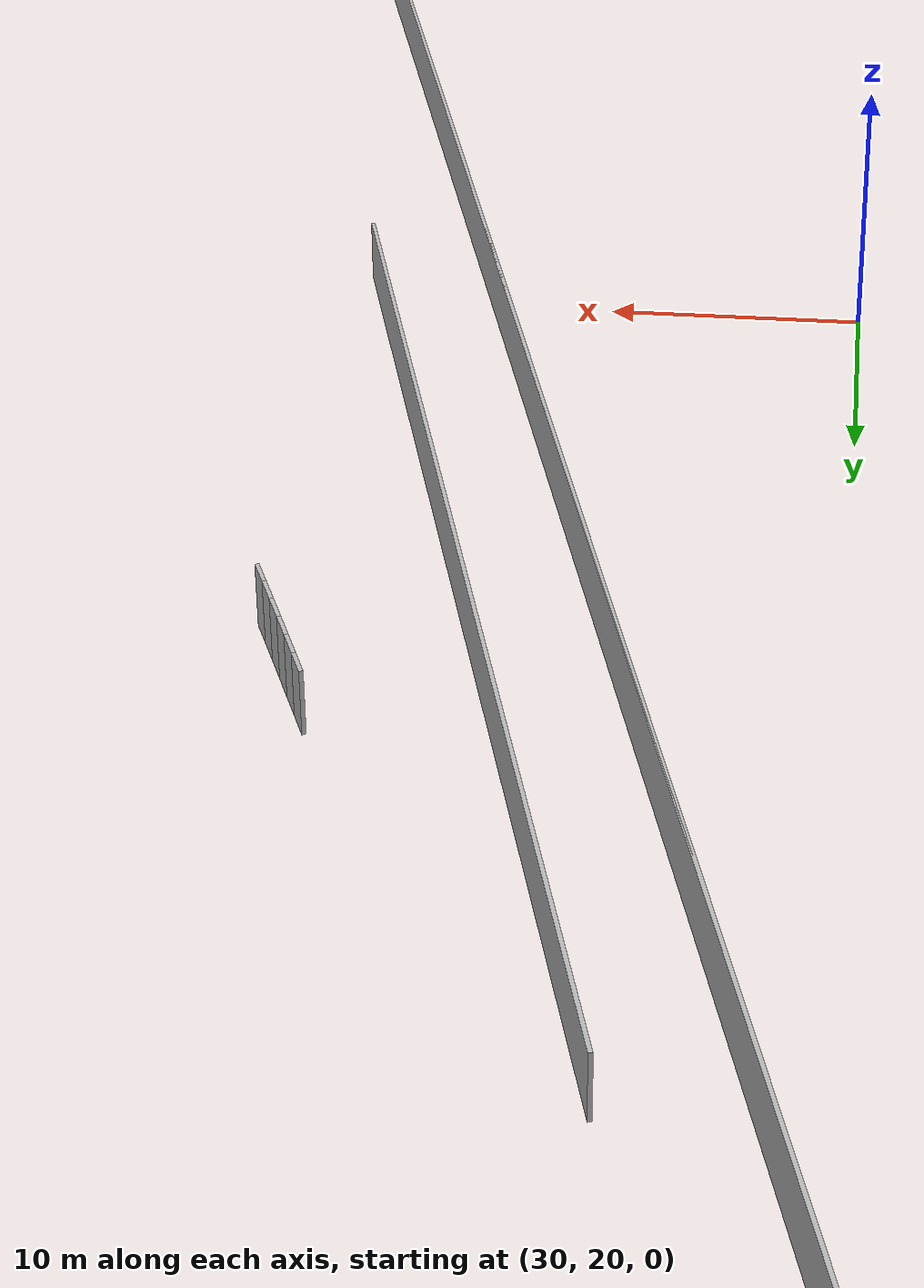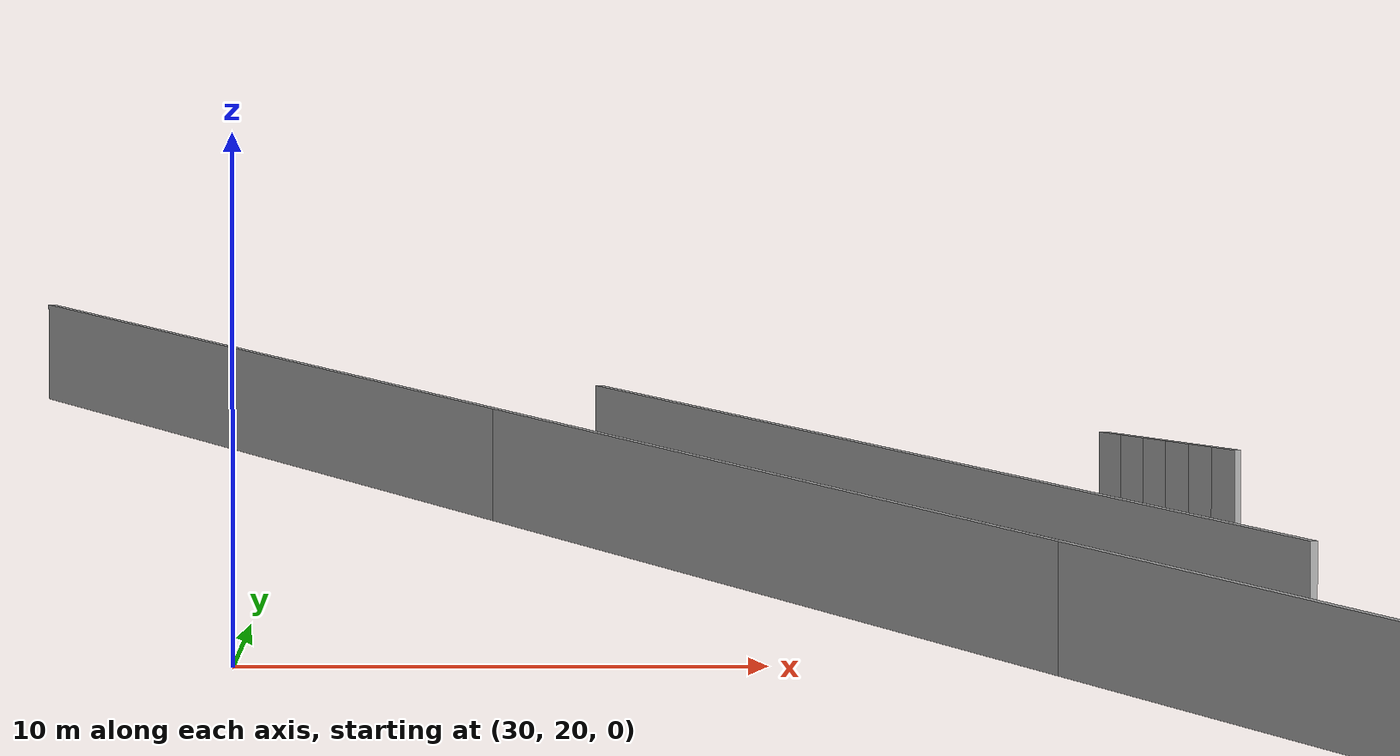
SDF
<?xml version="1.0" ?>
<sdf version="1.6">
  <model name="sps_0415">
    <pose frame="">0 0 0 0 -0 0</pose>
    <static>1</static>
    <self_collide>0</self_collide>
    <allow_auto_disable>0</allow_auto_disable>
    <link name="Wall272">
      <kinematic>0</kinematic>
      <gravity>1</gravity>
      <self_collide>0</self_collide>
      <collision name="collision">
        <geometry>
          <box>
            <size>51.7473 0.15 2.5</size>
          </box>
        </geometry>
        <pose frame="">0 0 0 0 -0 0</pose>
      </collision>
      <visual name="visual">
        <geometry>
          <box>
            <size>51.7473 0.15 2.5</size>
          </box>
        </geometry>
        <pose frame="">0 0 0 0 -0 0</pose>
        <cast_shadows>1</cast_shadows>
        <transparency>0.0</transparency>
      </visual>
      <pose frame="">43.408 42.8931 1.25 0 -0 1.83141</pose>
    </link>
    <link name="Wall331">
      <kinematic>0</kinematic>
      <gravity>1</gravity>
      <self_collide>0</self_collide>
      <collision name="collision">
        <geometry>
          <box>
            <size>42.4736 0.15 2.5</size>
          </box>
        </geometry>
        <pose frame="">0 0 0 0 -0 0</pose>
      </collision>
      <visual name="visual">
        <geometry>
          <box>
            <size>42.4736 0.15 2.5</size>
          </box>
        </geometry>
        <pose frame="">0 0 0 0 -0 0</pose>
        <cast_shadows>1</cast_shadows>
        <transparency>0.0</transparency>
      </visual>
      <pose frame="">39.9368 38.414 1.25 0 -0 1.83117</pose>
    </link>
    <link name="Wall1888">
      <kinematic>0</kinematic>
      <gravity>1</gravity>
      <self_collide>0</self_collide>
      <collision name="collision">
        <geometry>
          <box>
            <size>143.64 0.15 2.5</size>
          </box>
        </geometry>
        <pose frame="">0 0 0 0 -0 0</pose>
      </collision>
      <visual name="visual">
        <geometry>
          <box>
            <size>143.64 0.15 2.5</size>
          </box>
        </geometry>
        <pose frame="">0 0 0 0 -0 0</pose>
        <cast_shadows>1</cast_shadows>
        <transparency>0.0</transparency>
      </visual>
      <pose frame="">40.6503 35.736 1.25 0 -0 1.83117</pose>
    </link>
    <link name="Wall9331">
      <kinematic>0</kinematic>
      <gravity>1</gravity>
      <self_collide>0</self_collide>
      <collision name="collision">
        <geometry>
          <box>
            <size>1.12619 0.15 2.5</size>
          </box>
        </geometry>
        <pose frame="">0 0 0 0 -0 0</pose>
      </collision>
      <visual name="visual">
        <geometry>
          <box>
            <size>1.12619 0.15 2.5</size>
          </box>
        </geometry>
        <pose frame="">0 0 0 0 -0 0</pose>
        <cast_shadows>1</cast_shadows>
        <transparency>0.0</transparency>
      </visual>
      <pose frame="">47.8216 49.9898 1.25 0 0 -1.18496</pose>
    </link>
    <link name="Wall9332">
      <kinematic>0</kinematic>
      <gravity>1</gravity>
      <self_collide>0</self_collide>
      <collision name="collision">
        <geometry>
          <box>
            <size>1.12646 0.15 2.5</size>
          </box>
        </geometry>
        <pose frame="">0 0 0 0 -0 0</pose>
      </collision>
      <visual name="visual">
        <geometry>
          <box>
            <size>1.12646 0.15 2.5</size>
          </box>
        </geometry>
        <pose frame="">0 0 0 0 -0 0</pose>
        <cast_shadows>1</cast_shadows>
        <transparency>0.0</transparency>
      </visual>
      <pose frame="">48.246 48.9465 1.25 0 0 -1.18394</pose>
    </link>
    <link name="Wall9333">
      <kinematic>0</kinematic>
      <gravity>1</gravity>
      <self_collide>0</self_collide>
      <collision name="collision">
        <geometry>
          <box>
            <size>1.1262 0.15 2.5</size>
          </box>
        </geometry>
        <pose frame="">0 0 0 0 -0 0</pose>
      </collision>
      <visual name="visual">
        <geometry>
          <box>
            <size>1.1262 0.15 2.5</size>
          </box>
        </geometry>
        <pose frame="">0 0 0 0 -0 0</pose>
        <cast_shadows>1</cast_shadows>
        <transparency>0.0</transparency>
      </visual>
      <pose frame="">48.6717 47.9037 1.25 0 0 -1.1825</pose>
    </link>
    <link name="Wall9334">
      <kinematic>0</kinematic>
      <gravity>1</gravity>
      <self_collide>0</self_collide>
      <collision name="collision">
        <geometry>
          <box>
            <size>1.12631 0.15 2.5</size>
          </box>
        </geometry>
        <pose frame="">0 0 0 0 -0 0</pose>
      </collision>
      <visual name="visual">
        <geometry>
          <box>
            <size>1.12631 0.15 2.5</size>
          </box>
        </geometry>
        <pose frame="">0 0 0 0 -0 0</pose>
        <cast_shadows>1</cast_shadows>
        <transparency>0.0</transparency>
      </visual>
      <pose frame="">49.0986 46.8615 1.25 0 0 -1.18155</pose>
    </link>
    <link name="Wall9335">
      <kinematic>0</kinematic>
      <gravity>1</gravity>
      <self_collide>0</self_collide>
      <collision name="collision">
        <geometry>
          <box>
            <size>1.1262 0.15 2.5</size>
          </box>
        </geometry>
        <pose frame="">0 0 0 0 -0 0</pose>
      </collision>
      <visual name="visual">
        <geometry>
          <box>
            <size>1.1262 0.15 2.5</size>
          </box>
        </geometry>
        <pose frame="">0 0 0 0 -0 0</pose>
        <cast_shadows>1</cast_shadows>
        <transparency>0.0</transparency>
      </visual>
      <pose frame="">49.5267 45.8198 1.25 0 0 -1.18022</pose>
    </link>
    <link name="Wall9336">
      <kinematic>0</kinematic>
      <gravity>1</gravity>
      <self_collide>0</self_collide>
      <collision name="collision">
        <geometry>
          <box>
            <size>1.12632 0.15 2.5</size>
          </box>
        </geometry>
        <pose frame="">0 0 0 0 -0 0</pose>
      </collision>
      <visual name="visual">
        <geometry>
          <box>
            <size>1.12632 0.15 2.5</size>
          </box>
        </geometry>
        <pose frame="">0 0 0 0 -0 0</pose>
        <cast_shadows>1</cast_shadows>
        <transparency>0.0</transparency>
      </visual>
      <pose frame="">49.956 44.7786 1.25 0 0 -1.17909</pose>
    </link>
  </model>
</sdf>
